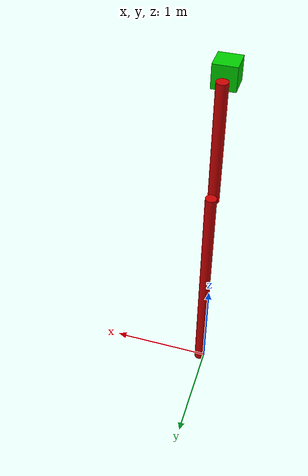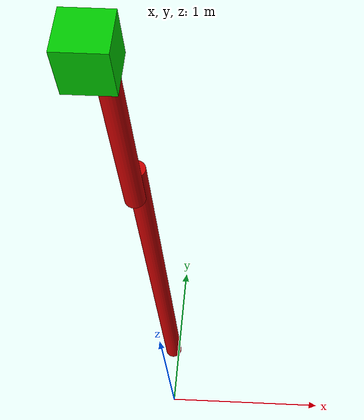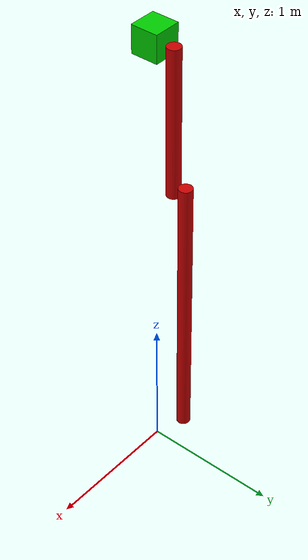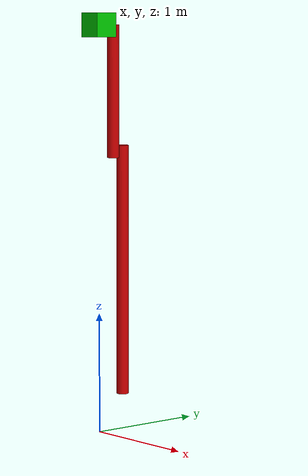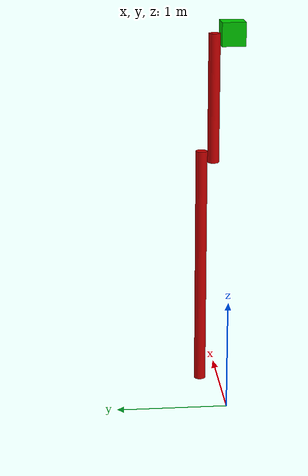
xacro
<?xml version="1.0"?>
<!-- Acrobot Robot -->
<robot name="acrobot" xmlns:xacro="http://www.ros.org/wiki/xacro">

  <!-- Constants -->
  <xacro:property name="PI" value="3.1415926535897931"/>
  <xacro:property name="mass1" value="1" />
  <xacro:property name="mass2" value="1" />
  <xacro:property name="mass3" value="1" />
  <xacro:property name="base_pos_z" value="3.5" />
  <xacro:property name="base_width" value="0.2" />
  <xacro:property name="link2_length" value="1.1" />
  <xacro:property name="link2_radius" value="0.05" />
  <xacro:property name="link3_length" value="2.1" />
  <xacro:property name="link3_radius" value="0.05" />
  <xacro:property name="axel_offset" value="0.1" />

  <!-- Gazebo-customization elements -->
  <xacro:include filename="$(find acrobot_description)/urdf/acrobot.gazebo" />
  <!-- Colors -->
  <xacro:include filename="$(find acrobot_description)/urdf/materials.xacro" />

  <!-- Used for fixing robot to Gazebo 'base_link' -->
  <link name="world"/>

  <joint name="fixed" type="fixed">
    <parent link="world"/>
    <child link="link1"/>
    <origin xyz="0 0 ${base_pos_z}" rpy="0 ${PI} 0"/>
  </joint>

  <!-- Base Link -->
  <link name="link1">
    <collision>
      <origin xyz="0 0 ${base_width/2}" rpy="0 0 0"/>
      <geometry>
        <box size="${base_width} ${base_width} ${base_width}"/>
      </geometry>
    </collision>

    <visual>
      <origin xyz="0 0 ${base_width/2}" rpy="0 0 0"/>
      <geometry>
        <box size="${base_width} ${base_width} ${base_width}"/>
      </geometry>
      <material name="green"/>
    </visual>

    <inertial>
      <origin xyz="0 0 ${base_width/2}" rpy="0 0 0"/>
      <mass value="${mass1}"/>
      <inertia
          ixx="${mass1 / 12.0 * (2*base_width*base_width)}" ixy="0.0" ixz="0.0"
          iyy="${mass1 / 12.0 * (2*base_width*base_width)}" iyz="0.0"
          izz="${mass1 / 12.0 * (2*base_width*base_width)}"/>
    </inertial>
  </link>

  <!-- Shoulder Joint -->
  <joint name="joint1" type="continuous">
    <parent link="link1"/>
    <child link="link2"/>
    <origin xyz="0 ${base_width/2 + link2_radius} ${base_width/2}" rpy="0 0 0"/>
    <axis xyz="0 1 0"/>
    <dynamics damping="0.1"/>
  </joint>

  <!-- Upper Link -->
  <link name="link2">
    <collision>
      <origin xyz="0 0 ${link2_length/2}" rpy="0 0 0"/>
      <geometry>
        <cylinder length="${link2_length}" radius="${link2_radius}"/>
      </geometry>
    </collision>

    <visual>
      <origin xyz="0 0 ${link2_length/2}" rpy="0 0 0"/>
      <geometry>
        <cylinder length="${link2_length}" radius="${link2_radius}"/>
      </geometry>
      <material name="red"/>
    </visual>

    <inertial>
      <origin xyz="0 0 ${link2_length/2}" rpy="0 0 0"/>
      <mass value="${mass2}"/>
      <inertia
	  ixx="${mass2 / 12.0 * (3*link2_radius*link2_radius + link2_length*link2_length)}" ixy="0.0" ixz="0.0"
	  iyy="${mass2 / 12.0 * (3*link2_radius*link2_radius + link2_length*link2_length)}" iyz="0.0"
	  izz="${mass2 / 2.0 * (link2_radius*link2_radius)}"/>
    </inertial>
  </link>

  <!-- Elbow Joint -->
  <joint name="joint2" type="continuous">
    <parent link="link2"/>
    <child link="link3"/>
    <origin xyz="0 ${link2_radius*2} ${link2_length - axel_offset}" rpy="0 0 0"/>
    <axis xyz="0 1 0"/>
    <dynamics damping="0.1"/>
  </joint>

  <!-- Lower Link -->
  <link name="link3">
    <collision>
      <origin xyz="0 0 ${link3_length/2}" rpy="0 0 0"/>
      <geometry>
        <cylinder length="${link3_length}" radius="${link3_radius}"/>
      </geometry>
    </collision>

    <visual>
      <origin xyz="0 0 ${link3_length/2}" rpy="0 0 0"/>
      <geometry>
        <cylinder length="${link3_length}" radius="${link3_radius}"/>
      </geometry>
      <material name="red"/>
    </visual>

    <inertial>
      <origin xyz="0 0 ${link3_length/2}" rpy="0 0 0"/>
      <mass value="${mass3}"/>
      <inertia
        ixx="${mass3 / 12.0 * (3*link3_radius*link3_radius + link3_length*link3_length)}" ixy="0.0" ixz="0.0"
        iyy="${mass3 / 12.0 * (3*link3_radius*link3_radius + link3_length*link3_length)}" iyz="0.0"
        izz="${mass3 / 2.0 * (link3_radius*link3_radius)}"/>
    </inertial>
  </link>

  <transmission name="tran2">
    <type>transmission_interface/SimpleTransmission</type>
    <joint name="joint2">
      <hardwareInterface>EffortJointInterface</hardwareInterface>
    </joint>
    <actuator name="motor2">
      <hardwareInterface>EffortJointInterface</hardwareInterface>
      <mechanicalReduction>1</mechanicalReduction>
    </actuator>
  </transmission>

</robot>

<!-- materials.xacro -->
<robot>
  <material name="red">
    <color rgba="0.8 0.0 0.0 1.0"/>
  </material>

  <material name="green">
    <color rgba="0.0 0.8 0.0 1.0"/>
  </material>

  <material name="blue">
    <color rgba="0.0 0.0 0.8 1.0"/>
  </material>

  <material name="black">
    <color rgba="0.0 0.0 0.0 1.0"/>
  </material>

  <material name="white">
    <color rgba="1.0 1.0 1.0 1.0"/>
  </material>

  <material name="yellow">
    <color rgba="1.0 1.0 0.0 1.0"/>
  </material>

  <material name="grey">
    <color rgba="0.25 0.25 0.25 1.0"/>
  </material>

  <material name="orange">
    <color rgba="${255/255} ${140/255} 0 1.0"/>
  </material>

  <material name="brown">
    <color rgba="${139/255} ${69/255} ${19/255} 1.0"/>
  </material>

</robot>
